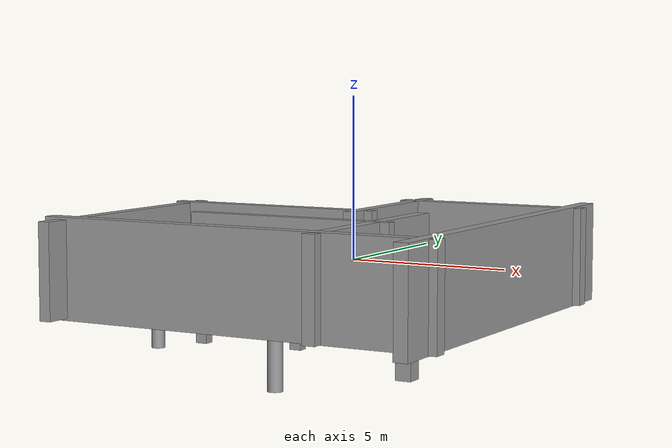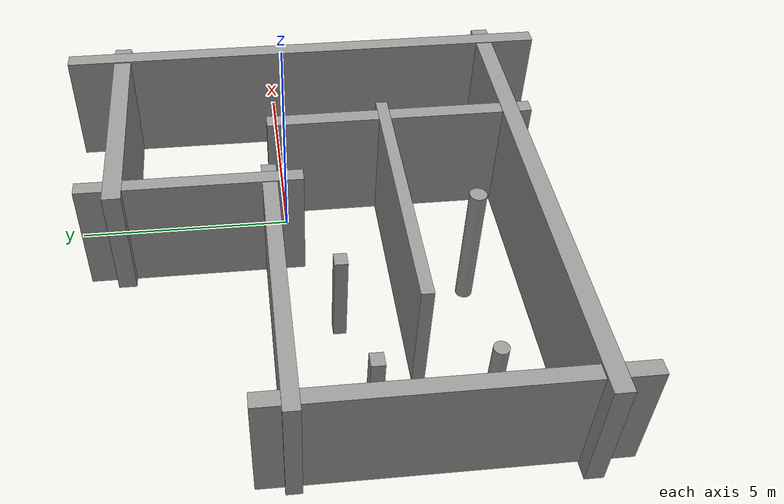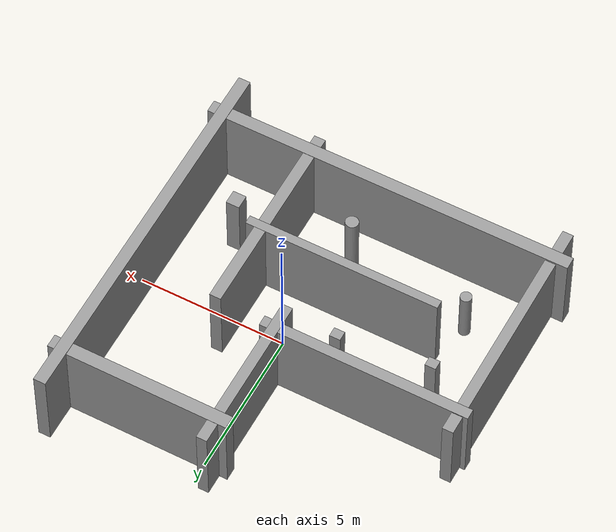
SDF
<?xml version='1.0'?>
<sdf version='1.7'>
  <model name='map_gazebo'>
    <link name='link_1'>
      <inertial>
        <mass>8.22261</mass>
        <inertia>
          <ixx>38.5271</ixx>
          <ixy>0</ixy>
          <ixz>0</ixz>
          <iyy>6.37562</iyy>
          <iyz>0</iyz>
          <izz>32.3678</izz>
        </inertia>
        <pose>0 0 0 0 -0 0</pose>
      </inertial>
      <pose>2.19697 -3.11026 -0.000127 0 -0 0</pose>
      <self_collide>0</self_collide>
      <enable_wind>0</enable_wind>
      <kinematic>0</kinematic>
      <visual name='visual'>
        <pose>0 0 0 0 -0 0</pose>
        <geometry>
          <box>
            <size>0.397271 6.86144 3.02435</size>
          </box>
        </geometry>
        <material>
          <lighting>1</lighting>
          <script>
            <uri>file://media/materials/scripts/gazebo.material</uri>
            <name>Gazebo/Grey</name>
          </script>
          <shader type='pixel'/>
        </material>
        <transparency>0</transparency>
        <cast_shadows>1</cast_shadows>
      </visual>
      <collision name='collision'>
        <laser_retro>0</laser_retro>
        <max_contacts>10</max_contacts>
        <pose>0 0 0 0 -0 0</pose>
        <geometry>
          <box>
            <size>0.397271 6.86144 3.02435</size>
          </box>
        </geometry>
        <surface>
          <friction>
            <ode>
              <mu>1</mu>
              <mu2>1</mu2>
              <fdir1>0 0 0</fdir1>
              <slip1>0</slip1>
              <slip2>0</slip2>
            </ode>
            <torsional>
              <coefficient>1</coefficient>
              <patch_radius>0</patch_radius>
              <surface_radius>0</surface_radius>
              <use_patch_radius>1</use_patch_radius>
              <ode>
                <slip>0</slip>
              </ode>
            </torsional>
          </friction>
          <bounce>
            <restitution_coefficient>0</restitution_coefficient>
            <threshold>1e+06</threshold>
          </bounce>
          <contact>
            <collide_without_contact>0</collide_without_contact>
            <collide_without_contact_bitmask>1</collide_without_contact_bitmask>
            <collide_bitmask>1</collide_bitmask>
            <ode>
              <soft_cfm>0</soft_cfm>
              <soft_erp>0.2</soft_erp>
              <kp>1e+13</kp>
              <kd>1</kd>
              <max_vel>0.01</max_vel>
              <min_depth>0</min_depth>
            </ode>
            <bullet>
              <split_impulse>1</split_impulse>
              <split_impulse_penetration_threshold>-0.01</split_impulse_penetration_threshold>
              <soft_cfm>0</soft_cfm>
              <soft_erp>0.2</soft_erp>
              <kp>1e+13</kp>
              <kd>1</kd>
            </bullet>
          </contact>
        </surface>
      </collision>
    </link>
    <link name='link_0'>
      <inertial>
        <mass>0.735918</mass>
        <inertia>
          <ixx>0.81443</ixx>
          <ixy>0</ixy>
          <ixz>0</ixz>
          <iyy>0.81443</iyy>
          <iyz>0</iyz>
          <izz>0.0186838</izz>
        </inertia>
        <pose>0 0 0 0 -0 0</pose>
      </inertial>
      <pose>0.139033 -4.85907 -1.41995 0 0.002317 2.8e-05</pose>
      <self_collide>0</self_collide>
      <enable_wind>0</enable_wind>
      <kinematic>0</kinematic>
      <visual name='visual'>
        <pose>0 0 0 0 -0 0</pose>
        <geometry>
          <cylinder>
            <radius>0.225337</radius>
            <length>3.62324</length>
          </cylinder>
        </geometry>
        <material>
          <lighting>1</lighting>
          <script>
            <uri>file://media/materials/scripts/gazebo.material</uri>
            <name>Gazebo/Grey</name>
          </script>
          <shader type='pixel'/>
        </material>
        <transparency>0</transparency>
        <cast_shadows>1</cast_shadows>
      </visual>
      <collision name='collision'>
        <laser_retro>0</laser_retro>
        <max_contacts>10</max_contacts>
        <pose>0 0 0 0 -0 0</pose>
        <geometry>
          <cylinder>
            <radius>0.225337</radius>
            <length>3.62324</length>
          </cylinder>
        </geometry>
        <surface>
          <friction>
            <ode>
              <mu>1</mu>
              <mu2>1</mu2>
              <fdir1>0 0 0</fdir1>
              <slip1>0</slip1>
              <slip2>0</slip2>
            </ode>
            <torsional>
              <coefficient>1</coefficient>
              <patch_radius>0</patch_radius>
              <surface_radius>0</surface_radius>
              <use_patch_radius>1</use_patch_radius>
              <ode>
                <slip>0</slip>
              </ode>
            </torsional>
          </friction>
          <bounce>
            <restitution_coefficient>0</restitution_coefficient>
            <threshold>1e+06</threshold>
          </bounce>
          <contact>
            <collide_without_contact>0</collide_without_contact>
            <collide_without_contact_bitmask>1</collide_without_contact_bitmask>
            <collide_bitmask>1</collide_bitmask>
            <ode>
              <soft_cfm>0</soft_cfm>
              <soft_erp>0.2</soft_erp>
              <kp>1e+13</kp>
              <kd>1</kd>
              <max_vel>0.01</max_vel>
              <min_depth>0</min_depth>
            </ode>
            <bullet>
              <split_impulse>1</split_impulse>
              <split_impulse_penetration_threshold>-0.01</split_impulse_penetration_threshold>
              <soft_cfm>0</soft_cfm>
              <soft_erp>0.2</soft_erp>
              <kp>1e+13</kp>
              <kd>1</kd>
            </bullet>
          </contact>
        </surface>
      </collision>
    </link>
    <link name='link_10'>
      <inertial>
        <mass>17.0476</mass>
        <inertia>
          <ixx>13.4581</ixx>
          <ixy>0</ixy>
          <ixz>0</ixz>
          <iyy>245.423</iyy>
          <iyz>0</iyz>
          <izz>232.509</izz>
        </inertia>
        <pose>0 0 0 0 -0 0</pose>
      </inertial>
      <pose>-0.53296 -6.00244 -0 0 -0 0</pose>
      <self_collide>0</self_collide>
      <enable_wind>0</enable_wind>
      <kinematic>0</kinematic>
      <visual name='visual'>
        <pose>0 0 0 0 -0 0</pose>
        <geometry>
          <box>
            <size>12.7857 0.437546 3.04661</size>
          </box>
        </geometry>
        <material>
          <lighting>1</lighting>
          <script>
            <uri>file://media/materials/scripts/gazebo.material</uri>
            <name>Gazebo/Grey</name>
          </script>
          <shader type='pixel'/>
        </material>
        <transparency>0</transparency>
        <cast_shadows>1</cast_shadows>
      </visual>
      <collision name='collision'>
        <laser_retro>0</laser_retro>
        <max_contacts>10</max_contacts>
        <pose>0 0 0 0 -0 0</pose>
        <geometry>
          <box>
            <size>12.7857 0.437546 3.04661</size>
          </box>
        </geometry>
        <surface>
          <friction>
            <ode>
              <mu>1</mu>
              <mu2>1</mu2>
              <fdir1>0 0 0</fdir1>
              <slip1>0</slip1>
              <slip2>0</slip2>
            </ode>
            <torsional>
              <coefficient>1</coefficient>
              <patch_radius>0</patch_radius>
              <surface_radius>0</surface_radius>
              <use_patch_radius>1</use_patch_radius>
              <ode>
                <slip>0</slip>
              </ode>
            </torsional>
          </friction>
          <bounce>
            <restitution_coefficient>0</restitution_coefficient>
            <threshold>1e+06</threshold>
          </bounce>
          <contact>
            <collide_without_contact>0</collide_without_contact>
            <collide_without_contact_bitmask>1</collide_without_contact_bitmask>
            <collide_bitmask>1</collide_bitmask>
            <ode>
              <soft_cfm>0</soft_cfm>
              <soft_erp>0.2</soft_erp>
              <kp>1e+13</kp>
              <kd>1</kd>
              <max_vel>0.01</max_vel>
              <min_depth>0</min_depth>
            </ode>
            <bullet>
              <split_impulse>1</split_impulse>
              <split_impulse_penetration_threshold>-0.01</split_impulse_penetration_threshold>
              <soft_cfm>0</soft_cfm>
              <soft_erp>0.2</soft_erp>
              <kp>1e+13</kp>
              <kd>1</kd>
            </bullet>
          </contact>
        </surface>
      </collision>
    </link>
    <link name='link_12'>
      <inertial>
        <mass>8.53655</mass>
        <inertia>
          <ixx>6.65039</ixx>
          <ixy>0</ixy>
          <ixz>0</ixz>
          <iyy>34.292</iyy>
          <iyz>0</iyz>
          <izz>27.9318</izz>
        </inertia>
        <pose>0 0 0 0 -0 0</pose>
      </inertial>
      <pose>2.72305 4.11056 -0 0 -0 0</pose>
      <self_collide>0</self_collide>
      <enable_wind>0</enable_wind>
      <kinematic>0</kinematic>
      <visual name='visual'>
        <pose>0 0 0 0 -0 0</pose>
        <geometry>
          <box>
            <size>6.24983 0.451674 3.024</size>
          </box>
        </geometry>
        <material>
          <lighting>1</lighting>
          <script>
            <uri>file://media/materials/scripts/gazebo.material</uri>
            <name>Gazebo/Grey</name>
          </script>
          <shader type='pixel'/>
        </material>
        <transparency>0</transparency>
        <cast_shadows>1</cast_shadows>
      </visual>
      <collision name='collision'>
        <laser_retro>0</laser_retro>
        <max_contacts>10</max_contacts>
        <pose>0 0 0 0 -0 0</pose>
        <geometry>
          <box>
            <size>6.24983 0.451674 3.024</size>
          </box>
        </geometry>
        <surface>
          <friction>
            <ode>
              <mu>1</mu>
              <mu2>1</mu2>
              <fdir1>0 0 0</fdir1>
              <slip1>0</slip1>
              <slip2>0</slip2>
            </ode>
            <torsional>
              <coefficient>1</coefficient>
              <patch_radius>0</patch_radius>
              <surface_radius>0</surface_radius>
              <use_patch_radius>1</use_patch_radius>
              <ode>
                <slip>0</slip>
              </ode>
            </torsional>
          </friction>
          <bounce>
            <restitution_coefficient>0</restitution_coefficient>
            <threshold>1e+06</threshold>
          </bounce>
          <contact>
            <collide_without_contact>0</collide_without_contact>
            <collide_without_contact_bitmask>1</collide_without_contact_bitmask>
            <collide_bitmask>1</collide_bitmask>
            <ode>
              <soft_cfm>0</soft_cfm>
              <soft_erp>0.2</soft_erp>
              <kp>1e+13</kp>
              <kd>1</kd>
              <max_vel>0.01</max_vel>
              <min_depth>0</min_depth>
            </ode>
            <bullet>
              <split_impulse>1</split_impulse>
              <split_impulse_penetration_threshold>-0.01</split_impulse_penetration_threshold>
              <soft_cfm>0</soft_cfm>
              <soft_erp>0.2</soft_erp>
              <kp>1e+13</kp>
              <kd>1</kd>
            </bullet>
          </contact>
        </surface>
      </collision>
    </link>
    <link name='link_1_0'>
      <inertial>
        <mass>0.326022</mass>
        <inertia>
          <ixx>0.184765</ixx>
          <ixy>0</ixy>
          <ixz>0</ixz>
          <iyy>0.185581</iyy>
          <iyz>0</iyz>
          <izz>0.00689835</izz>
        </inertia>
        <pose>0 0 0 0 -0 0</pose>
      </inertial>
      <pose>-1.28136 -1.20721 -1.41666 0 0.002317 2.8e-05</pose>
      <self_collide>0</self_collide>
      <enable_wind>0</enable_wind>
      <kinematic>0</kinematic>
      <visual name='visual'>
        <pose>0 0 0 0 -0 0</pose>
        <geometry>
          <box>
            <size>0.376807 0.334554 2.58627</size>
          </box>
        </geometry>
        <material>
          <lighting>1</lighting>
          <script>
            <uri>file://media/materials/scripts/gazebo.material</uri>
            <name>Gazebo/Grey</name>
          </script>
          <shader type='pixel'/>
        </material>
        <transparency>0</transparency>
        <cast_shadows>1</cast_shadows>
      </visual>
      <collision name='collision'>
        <laser_retro>0</laser_retro>
        <max_contacts>10</max_contacts>
        <pose>0 0 0 0 -0 0</pose>
        <geometry>
          <box>
            <size>0.376807 0.334554 2.58627</size>
          </box>
        </geometry>
        <surface>
          <friction>
            <ode>
              <mu>1</mu>
              <mu2>1</mu2>
              <fdir1>0 0 0</fdir1>
              <slip1>0</slip1>
              <slip2>0</slip2>
            </ode>
            <torsional>
              <coefficient>1</coefficient>
              <patch_radius>0</patch_radius>
              <surface_radius>0</surface_radius>
              <use_patch_radius>1</use_patch_radius>
              <ode>
                <slip>0</slip>
              </ode>
            </torsional>
          </friction>
          <bounce>
            <restitution_coefficient>0</restitution_coefficient>
            <threshold>1e+06</threshold>
          </bounce>
          <contact>
            <collide_without_contact>0</collide_without_contact>
            <collide_without_contact_bitmask>1</collide_without_contact_bitmask>
            <collide_bitmask>1</collide_bitmask>
            <ode>
              <soft_cfm>0</soft_cfm>
              <soft_erp>0.2</soft_erp>
              <kp>1e+13</kp>
              <kd>1</kd>
              <max_vel>0.01</max_vel>
              <min_depth>0</min_depth>
            </ode>
            <bullet>
              <split_impulse>1</split_impulse>
              <split_impulse_penetration_threshold>-0.01</split_impulse_penetration_threshold>
              <soft_cfm>0</soft_cfm>
              <soft_erp>0.2</soft_erp>
              <kp>1e+13</kp>
              <kd>1</kd>
            </bullet>
          </contact>
        </surface>
      </collision>
    </link>
    <link name='link_1_0_clone'>
      <inertial>
        <mass>0.326022</mass>
        <inertia>
          <ixx>0.184765</ixx>
          <ixy>0</ixy>
          <ixz>0</ixz>
          <iyy>0.185581</iyy>
          <iyz>0</iyz>
          <izz>0.00689835</izz>
        </inertia>
        <pose>0 0 0 0 -0 0</pose>
      </inertial>
      <pose>-4.40242 -1.65465 -1.40647 0 0.004634 5.6e-05</pose>
      <self_collide>0</self_collide>
      <enable_wind>0</enable_wind>
      <kinematic>0</kinematic>
      <visual name='visual_0'>
        <pose>0 0 0 0 -0 0</pose>
        <geometry>
          <box>
            <size>0.376807 0.334554 2.58627</size>
          </box>
        </geometry>
        <material>
          <lighting>1</lighting>
          <script>
            <uri>file://media/materials/scripts/gazebo.material</uri>
            <name>Gazebo/Grey</name>
          </script>
          <shader type='pixel'/>
        </material>
        <transparency>0</transparency>
        <cast_shadows>1</cast_shadows>
      </visual>
      <collision name='collision'>
        <laser_retro>0</laser_retro>
        <max_contacts>10</max_contacts>
        <pose>0 0 0 0 -0 0</pose>
        <geometry>
          <box>
            <size>0.376807 0.334554 2.58627</size>
          </box>
        </geometry>
        <surface>
          <friction>
            <ode>
              <mu>1</mu>
              <mu2>1</mu2>
              <fdir1>0 0 0</fdir1>
              <slip1>0</slip1>
              <slip2>0</slip2>
            </ode>
            <torsional>
              <coefficient>1</coefficient>
              <patch_radius>0</patch_radius>
              <surface_radius>0</surface_radius>
              <use_patch_radius>1</use_patch_radius>
              <ode>
                <slip>0</slip>
              </ode>
            </torsional>
          </friction>
          <bounce>
            <restitution_coefficient>0</restitution_coefficient>
            <threshold>1e+06</threshold>
          </bounce>
          <contact>
            <collide_without_contact>0</collide_without_contact>
            <collide_without_contact_bitmask>1</collide_without_contact_bitmask>
            <collide_bitmask>1</collide_bitmask>
            <ode>
              <soft_cfm>0</soft_cfm>
              <soft_erp>0.2</soft_erp>
              <kp>1e+13</kp>
              <kd>1</kd>
              <max_vel>0.01</max_vel>
              <min_depth>0</min_depth>
            </ode>
            <bullet>
              <split_impulse>1</split_impulse>
              <split_impulse_penetration_threshold>-0.01</split_impulse_penetration_threshold>
              <soft_cfm>0</soft_cfm>
              <soft_erp>0.2</soft_erp>
              <kp>1e+13</kp>
              <kd>1</kd>
            </bullet>
          </contact>
        </surface>
      </collision>
    </link>
    <link name='link_2'>
      <inertial>
        <mass>0.554632</mass>
        <inertia>
          <ixx>0.281109</ixx>
          <ixy>0</ixy>
          <ixz>0</ixz>
          <iyy>0.280186</iyy>
          <iyz>0</iyz>
          <izz>0.0212317</izz>
        </inertia>
        <pose>0 0 0 0 -0 0</pose>
      </inertial>
      <pose>3.99539 -4.24868 -1.42889 0 0.002317 2.8e-05</pose>
      <self_collide>0</self_collide>
      <enable_wind>0</enable_wind>
      <kinematic>0</kinematic>
      <visual name='visual'>
        <pose>0 0 0 0 -0 0</pose>
        <geometry>
          <box>
            <size>0.468719 0.489561 2.41711</size>
          </box>
        </geometry>
        <material>
          <lighting>1</lighting>
          <script>
            <uri>file://media/materials/scripts/gazebo.material</uri>
            <name>Gazebo/Grey</name>
          </script>
          <shader type='pixel'/>
        </material>
        <transparency>0</transparency>
        <cast_shadows>1</cast_shadows>
      </visual>
      <collision name='collision'>
        <laser_retro>0</laser_retro>
        <max_contacts>10</max_contacts>
        <pose>0 0 0 0 -0 0</pose>
        <geometry>
          <box>
            <size>0.468719 0.489561 2.41711</size>
          </box>
        </geometry>
        <surface>
          <friction>
            <ode>
              <mu>1</mu>
              <mu2>1</mu2>
              <fdir1>0 0 0</fdir1>
              <slip1>0</slip1>
              <slip2>0</slip2>
            </ode>
            <torsional>
              <coefficient>1</coefficient>
              <patch_radius>0</patch_radius>
              <surface_radius>0</surface_radius>
              <use_patch_radius>1</use_patch_radius>
              <ode>
                <slip>0</slip>
              </ode>
            </torsional>
          </friction>
          <bounce>
            <restitution_coefficient>0</restitution_coefficient>
            <threshold>1e+06</threshold>
          </bounce>
          <contact>
            <collide_without_contact>0</collide_without_contact>
            <collide_without_contact_bitmask>1</collide_without_contact_bitmask>
            <collide_bitmask>1</collide_bitmask>
            <ode>
              <soft_cfm>0</soft_cfm>
              <soft_erp>0.2</soft_erp>
              <kp>1e+13</kp>
              <kd>1</kd>
              <max_vel>0.01</max_vel>
              <min_depth>0</min_depth>
            </ode>
            <bullet>
              <split_impulse>1</split_impulse>
              <split_impulse_penetration_threshold>-0.01</split_impulse_penetration_threshold>
              <soft_cfm>0</soft_cfm>
              <soft_erp>0.2</soft_erp>
              <kp>1e+13</kp>
              <kd>1</kd>
            </bullet>
          </contact>
        </surface>
      </collision>
    </link>
    <link name='link_3'>
      <inertial>
        <mass>8.99885</mass>
        <inertia>
          <ixx>57.0617</ixx>
          <ixy>0</ixy>
          <ixz>0</ixz>
          <iyy>6.45009</iyy>
          <iyz>0</iyz>
          <izz>50.824</izz>
        </inertia>
        <pose>0 0 0 0 -0 0</pose>
      </inertial>
      <pose>-6.34081 -2.91406 0 0 -0 0</pose>
      <self_collide>0</self_collide>
      <enable_wind>0</enable_wind>
      <kinematic>0</kinematic>
      <visual name='visual'>
        <pose>0 0 0 0 -0 0</pose>
        <geometry>
          <box>
            <size>0.376237 8.22389 2.90855</size>
          </box>
        </geometry>
        <material>
          <lighting>1</lighting>
          <script>
            <uri>file://media/materials/scripts/gazebo.material</uri>
            <name>Gazebo/Grey</name>
          </script>
          <shader type='pixel'/>
        </material>
        <transparency>0</transparency>
        <cast_shadows>1</cast_shadows>
      </visual>
      <collision name='collision'>
        <laser_retro>0</laser_retro>
        <max_contacts>10</max_contacts>
        <pose>0 0 0 0 -0 0</pose>
        <geometry>
          <box>
            <size>0.376237 8.22389 2.90855</size>
          </box>
        </geometry>
        <surface>
          <friction>
            <ode>
              <mu>1</mu>
              <mu2>1</mu2>
              <fdir1>0 0 0</fdir1>
              <slip1>0</slip1>
              <slip2>0</slip2>
            </ode>
            <torsional>
              <coefficient>1</coefficient>
              <patch_radius>0</patch_radius>
              <surface_radius>0</surface_radius>
              <use_patch_radius>1</use_patch_radius>
              <ode>
                <slip>0</slip>
              </ode>
            </torsional>
          </friction>
          <bounce>
            <restitution_coefficient>0</restitution_coefficient>
            <threshold>1e+06</threshold>
          </bounce>
          <contact>
            <collide_without_contact>0</collide_without_contact>
            <collide_without_contact_bitmask>1</collide_without_contact_bitmask>
            <collide_bitmask>1</collide_bitmask>
            <ode>
              <soft_cfm>0</soft_cfm>
              <soft_erp>0.2</soft_erp>
              <kp>1e+13</kp>
              <kd>1</kd>
              <max_vel>0.01</max_vel>
              <min_depth>0</min_depth>
            </ode>
            <bullet>
              <split_impulse>1</split_impulse>
              <split_impulse_penetration_threshold>-0.01</split_impulse_penetration_threshold>
              <soft_cfm>0</soft_cfm>
              <soft_erp>0.2</soft_erp>
              <kp>1e+13</kp>
              <kd>1</kd>
            </bullet>
          </contact>
        </surface>
      </collision>
    </link>
    <link name='link_3_0'>
      <inertial>
        <mass>0.299789</mass>
        <inertia>
          <ixx>0.0978972</ixx>
          <ixy>0</ixy>
          <ixz>0</ixz>
          <iyy>0.0978972</iyy>
          <iyz>0</iyz>
          <izz>0.00576016</izz>
        </inertia>
        <pose>0 0 0 0 -0 0</pose>
      </inertial>
      <pose>-4.09952 -4.54368 -1.41013 0 0.002317 2.8e-05</pose>
      <self_collide>0</self_collide>
      <enable_wind>0</enable_wind>
      <kinematic>0</kinematic>
      <visual name='visual'>
        <pose>0 0 0 0 -0 0</pose>
        <geometry>
          <cylinder>
            <radius>0.196031</radius>
            <length>1.95022</length>
          </cylinder>
        </geometry>
        <material>
          <lighting>1</lighting>
          <script>
            <uri>file://media/materials/scripts/gazebo.material</uri>
            <name>Gazebo/Grey</name>
          </script>
          <shader type='pixel'/>
        </material>
        <transparency>0</transparency>
        <cast_shadows>1</cast_shadows>
      </visual>
      <collision name='collision'>
        <laser_retro>0</laser_retro>
        <max_contacts>10</max_contacts>
        <pose>0 0 0 0 -0 0</pose>
        <geometry>
          <cylinder>
            <radius>0.196031</radius>
            <length>1.95022</length>
          </cylinder>
        </geometry>
        <surface>
          <friction>
            <ode>
              <mu>1</mu>
              <mu2>1</mu2>
              <fdir1>0 0 0</fdir1>
              <slip1>0</slip1>
              <slip2>0</slip2>
            </ode>
            <torsional>
              <coefficient>1</coefficient>
              <patch_radius>0</patch_radius>
              <surface_radius>0</surface_radius>
              <use_patch_radius>1</use_patch_radius>
              <ode>
                <slip>0</slip>
              </ode>
            </torsional>
          </friction>
          <bounce>
            <restitution_coefficient>0</restitution_coefficient>
            <threshold>1e+06</threshold>
          </bounce>
          <contact>
            <collide_without_contact>0</collide_without_contact>
            <collide_without_contact_bitmask>1</collide_without_contact_bitmask>
            <collide_bitmask>1</collide_bitmask>
            <ode>
              <soft_cfm>0</soft_cfm>
              <soft_erp>0.2</soft_erp>
              <kp>1e+13</kp>
              <kd>1</kd>
              <max_vel>0.01</max_vel>
              <min_depth>0</min_depth>
            </ode>
            <bullet>
              <split_impulse>1</split_impulse>
              <split_impulse_penetration_threshold>-0.01</split_impulse_penetration_threshold>
              <soft_cfm>0</soft_cfm>
              <soft_erp>0.2</soft_erp>
              <kp>1e+13</kp>
              <kd>1</kd>
            </bullet>
          </contact>
        </surface>
      </collision>
    </link>
    <link name='link_5'>
      <inertial>
        <mass>6.14977</mass>
        <inertia>
          <ixx>4.74295</ixx>
          <ixy>0</ixy>
          <ixz>0</ixz>
          <iyy>28.0752</iyy>
          <iyz>0</iyz>
          <izz>23.4249</izz>
        </inertia>
        <pose>0 0 0 0 -0 0</pose>
      </inertial>
      <pose>-0.667343 -2.71271 -0 0 -0 0</pose>
      <self_collide>0</self_collide>
      <enable_wind>0</enable_wind>
      <kinematic>0</kinematic>
      <visual name='visual'>
        <pose>0 0 0 0 -0 0</pose>
        <geometry>
          <box>
            <size>6.75414 0.300761 3.02728</size>
          </box>
        </geometry>
        <material>
          <lighting>1</lighting>
          <script>
            <uri>file://media/materials/scripts/gazebo.material</uri>
            <name>Gazebo/Grey</name>
          </script>
          <shader type='pixel'/>
        </material>
        <transparency>0</transparency>
        <cast_shadows>1</cast_shadows>
      </visual>
      <collision name='collision'>
        <laser_retro>0</laser_retro>
        <max_contacts>10</max_contacts>
        <pose>0 0 0 0 -0 0</pose>
        <geometry>
          <box>
            <size>6.75414 0.300761 3.02728</size>
          </box>
        </geometry>
        <surface>
          <friction>
            <ode>
              <mu>1</mu>
              <mu2>1</mu2>
              <fdir1>0 0 0</fdir1>
              <slip1>0</slip1>
              <slip2>0</slip2>
            </ode>
            <torsional>
              <coefficient>1</coefficient>
              <patch_radius>0</patch_radius>
              <surface_radius>0</surface_radius>
              <use_patch_radius>1</use_patch_radius>
              <ode>
                <slip>0</slip>
              </ode>
            </torsional>
          </friction>
          <bounce>
            <restitution_coefficient>0</restitution_coefficient>
            <threshold>1e+06</threshold>
          </bounce>
          <contact>
            <collide_without_contact>0</collide_without_contact>
            <collide_without_contact_bitmask>1</collide_without_contact_bitmask>
            <collide_bitmask>1</collide_bitmask>
            <ode>
              <soft_cfm>0</soft_cfm>
              <soft_erp>0.2</soft_erp>
              <kp>1e+13</kp>
              <kd>1</kd>
              <max_vel>0.01</max_vel>
              <min_depth>0</min_depth>
            </ode>
            <bullet>
              <split_impulse>1</split_impulse>
              <split_impulse_penetration_threshold>-0.01</split_impulse_penetration_threshold>
              <soft_cfm>0</soft_cfm>
              <soft_erp>0.2</soft_erp>
              <kp>1e+13</kp>
              <kd>1</kd>
            </bullet>
          </contact>
        </surface>
      </collision>
    </link>
    <link name='link_7'>
      <inertial>
        <mass>7.91092</mass>
        <inertia>
          <ixx>5.9616</ixx>
          <ixy>0</ixy>
          <ixz>0</ixz>
          <iyy>40.1584</iyy>
          <iyz>0</iyz>
          <izz>34.375</izz>
        </inertia>
        <pose>0 0 0 0 -0 0</pose>
      </inertial>
      <pose>-3.09224 0.377491 -0 0 -0 0</pose>
      <self_collide>0</self_collide>
      <enable_wind>0</enable_wind>
      <kinematic>0</kinematic>
      <visual name='visual'>
        <pose>0 0 0 0 -0 0</pose>
        <geometry>
          <box>
            <size>7.21166 0.367616 2.98462</size>
          </box>
        </geometry>
        <material>
          <lighting>1</lighting>
          <script>
            <uri>file://media/materials/scripts/gazebo.material</uri>
            <name>Gazebo/Grey</name>
          </script>
          <shader type='pixel'/>
        </material>
        <transparency>0</transparency>
        <cast_shadows>1</cast_shadows>
      </visual>
      <collision name='collision'>
        <laser_retro>0</laser_retro>
        <max_contacts>10</max_contacts>
        <pose>0 0 0 0 -0 0</pose>
        <geometry>
          <box>
            <size>7.21166 0.367616 2.98462</size>
          </box>
        </geometry>
        <surface>
          <friction>
            <ode>
              <mu>1</mu>
              <mu2>1</mu2>
              <fdir1>0 0 0</fdir1>
              <slip1>0</slip1>
              <slip2>0</slip2>
            </ode>
            <torsional>
              <coefficient>1</coefficient>
              <patch_radius>0</patch_radius>
              <surface_radius>0</surface_radius>
              <use_patch_radius>1</use_patch_radius>
              <ode>
                <slip>0</slip>
              </ode>
            </torsional>
          </friction>
          <bounce>
            <restitution_coefficient>0</restitution_coefficient>
            <threshold>1e+06</threshold>
          </bounce>
          <contact>
            <collide_without_contact>0</collide_without_contact>
            <collide_without_contact_bitmask>1</collide_without_contact_bitmask>
            <collide_bitmask>1</collide_bitmask>
            <ode>
              <soft_cfm>0</soft_cfm>
              <soft_erp>0.2</soft_erp>
              <kp>1e+13</kp>
              <kd>1</kd>
              <max_vel>0.01</max_vel>
              <min_depth>0</min_depth>
            </ode>
            <bullet>
              <split_impulse>1</split_impulse>
              <split_impulse_penetration_threshold>-0.01</split_impulse_penetration_threshold>
              <soft_cfm>0</soft_cfm>
              <soft_erp>0.2</soft_erp>
              <kp>1e+13</kp>
              <kd>1</kd>
            </bullet>
          </contact>
        </surface>
      </collision>
    </link>
    <link name='link_8'>
      <inertial>
        <mass>6.05037</mass>
        <inertia>
          <ixx>19.632</ixx>
          <ixy>0</ixy>
          <ixz>0</ixz>
          <iyy>4.65738</iyy>
          <iyz>0</iyz>
          <izz>15.1106</izz>
        </inertia>
        <pose>0 0 0 0 -0 0</pose>
      </inertial>
      <pose>0.058365 2.29353 -0 0 -0 0</pose>
      <self_collide>0</self_collide>
      <enable_wind>0</enable_wind>
      <kinematic>0</kinematic>
      <visual name='visual'>
        <pose>0 0 0 0 -0 0</pose>
        <geometry>
          <box>
            <size>0.367167 5.46212 3.01702</size>
          </box>
        </geometry>
        <material>
          <lighting>1</lighting>
          <script>
            <uri>file://media/materials/scripts/gazebo.material</uri>
            <name>Gazebo/Grey</name>
          </script>
          <shader type='pixel'/>
        </material>
        <transparency>0</transparency>
        <cast_shadows>1</cast_shadows>
      </visual>
      <collision name='collision'>
        <laser_retro>0</laser_retro>
        <max_contacts>10</max_contacts>
        <pose>0 0 0 0 -0 0</pose>
        <geometry>
          <box>
            <size>0.367167 5.46212 3.01702</size>
          </box>
        </geometry>
        <surface>
          <friction>
            <ode>
              <mu>1</mu>
              <mu2>1</mu2>
              <fdir1>0 0 0</fdir1>
              <slip1>0</slip1>
              <slip2>0</slip2>
            </ode>
            <torsional>
              <coefficient>1</coefficient>
              <patch_radius>0</patch_radius>
              <surface_radius>0</surface_radius>
              <use_patch_radius>1</use_patch_radius>
              <ode>
                <slip>0</slip>
              </ode>
            </torsional>
          </friction>
          <bounce>
            <restitution_coefficient>0</restitution_coefficient>
            <threshold>1e+06</threshold>
          </bounce>
          <contact>
            <collide_without_contact>0</collide_without_contact>
            <collide_without_contact_bitmask>1</collide_without_contact_bitmask>
            <collide_bitmask>1</collide_bitmask>
            <ode>
              <soft_cfm>0</soft_cfm>
              <soft_erp>0.2</soft_erp>
              <kp>1e+13</kp>
              <kd>1</kd>
              <max_vel>0.01</max_vel>
              <min_depth>0</min_depth>
            </ode>
            <bullet>
              <split_impulse>1</split_impulse>
              <split_impulse_penetration_threshold>-0.01</split_impulse_penetration_threshold>
              <soft_cfm>0</soft_cfm>
              <soft_erp>0.2</soft_erp>
              <kp>1e+13</kp>
              <kd>1</kd>
            </bullet>
          </contact>
        </surface>
      </collision>
    </link>
    <link name='link_9'>
      <inertial>
        <mass>16.8855</mass>
        <inertia>
          <ixx>250.652</ixx>
          <ixy>0</ixy>
          <ixz>0</ixz>
          <iyy>13.6273</iyy>
          <iyz>0</iyz>
          <izz>237.525</izz>
        </inertia>
        <pose>0 0 0 0 -0 0</pose>
      </inertial>
      <pose>5.39696 -0.901973 -0 0 -0 0</pose>
      <self_collide>0</self_collide>
      <enable_wind>0</enable_wind>
      <kinematic>0</kinematic>
      <visual name='visual'>
        <pose>0 0 0 0 -0 0</pose>
        <geometry>
          <box>
            <size>0.421767 12.9855 3.08328</size>
          </box>
        </geometry>
        <material>
          <lighting>1</lighting>
          <script>
            <uri>file://media/materials/scripts/gazebo.material</uri>
            <name>Gazebo/Grey</name>
          </script>
          <shader type='pixel'/>
        </material>
        <transparency>0</transparency>
        <cast_shadows>1</cast_shadows>
      </visual>
      <collision name='collision'>
        <laser_retro>0</laser_retro>
        <max_contacts>10</max_contacts>
        <pose>0 0 0 0 -0 0</pose>
        <geometry>
          <box>
            <size>0.421767 12.9855 3.08328</size>
          </box>
        </geometry>
        <surface>
          <friction>
            <ode>
              <mu>1</mu>
              <mu2>1</mu2>
              <fdir1>0 0 0</fdir1>
              <slip1>0</slip1>
              <slip2>0</slip2>
            </ode>
            <torsional>
              <coefficient>1</coefficient>
              <patch_radius>0</patch_radius>
              <surface_radius>0</surface_radius>
              <use_patch_radius>1</use_patch_radius>
              <ode>
                <slip>0</slip>
              </ode>
            </torsional>
          </friction>
          <bounce>
            <restitution_coefficient>0</restitution_coefficient>
            <threshold>1e+06</threshold>
          </bounce>
          <contact>
            <collide_without_contact>0</collide_without_contact>
            <collide_without_contact_bitmask>1</collide_without_contact_bitmask>
            <collide_bitmask>1</collide_bitmask>
            <ode>
              <soft_cfm>0</soft_cfm>
              <soft_erp>0.2</soft_erp>
              <kp>1e+13</kp>
              <kd>1</kd>
              <max_vel>0.01</max_vel>
              <min_depth>0</min_depth>
            </ode>
            <bullet>
              <split_impulse>1</split_impulse>
              <split_impulse_penetration_threshold>-0.01</split_impulse_penetration_threshold>
              <soft_cfm>0</soft_cfm>
              <soft_erp>0.2</soft_erp>
              <kp>1e+13</kp>
              <kd>1</kd>
            </bullet>
          </contact>
        </surface>
      </collision>
    </link>
    <static>1</static>
    <allow_auto_disable>1</allow_auto_disable>
  </model>
</sdf>
